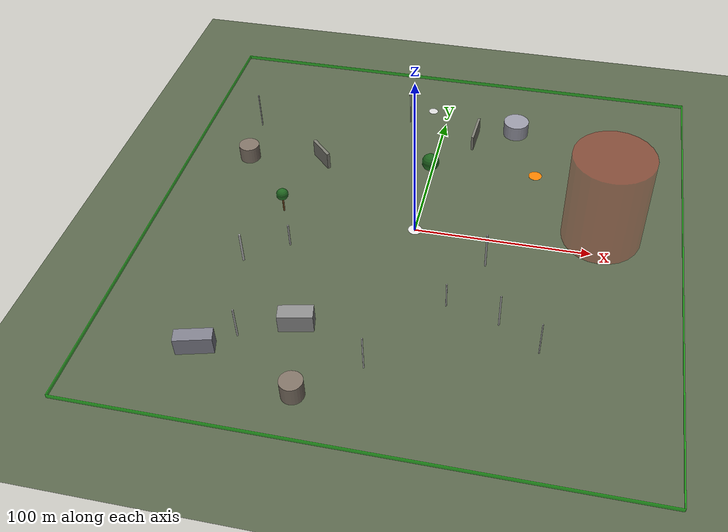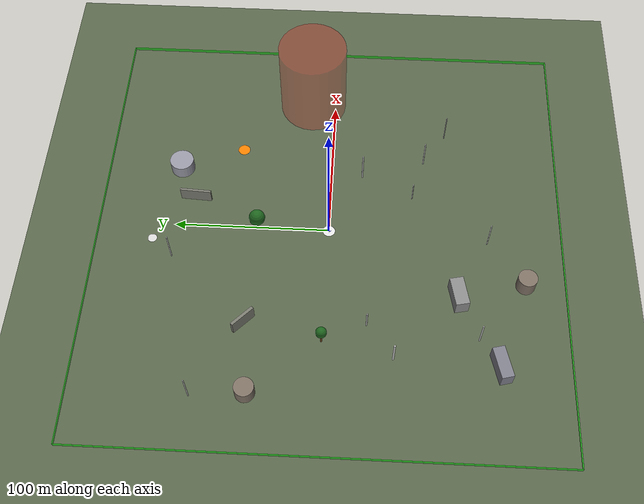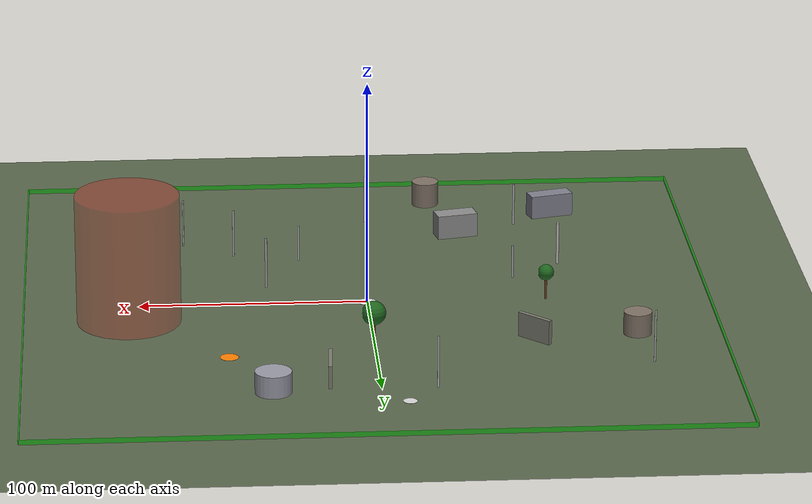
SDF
<?xml version="1.0" ?>
<sdf version="1.9">
  <!--
  Generated World: training_variant_010
  Seed: 52
  Difficulty: medium
  Obstacles: 19
  NFZs: 1
  Generated: 2025-12-27T10:39:35.578974
  Generator: Flyby F-11 World Generator v1.0.0
-->
  <world name="training_variant_010">
    <physics name="training_physics" type="ode">
      <max_step_size>0.001</max_step_size>
      <real_time_factor>1.0</real_time_factor>
      <real_time_update_rate>1000</real_time_update_rate>
      <ode>
        <solver>
          <type>quick</type>
          <iters>50</iters>
          <sor>1.3</sor>
        </solver>
        <constraints>
          <cfm>0.0</cfm>
          <erp>0.2</erp>
        </constraints>
      </ode>
    </physics>
    <plugin filename="gz-sim-physics-system" name="gz::sim::systems::Physics"/>
    <plugin filename="gz-sim-sensors-system" name="gz::sim::systems::Sensors">
      <render_engine>ogre2</render_engine>
    </plugin>
    <plugin filename="gz-sim-scene-broadcaster-system" name="gz::sim::systems::SceneBroadcaster"/>
    <plugin filename="gz-sim-user-commands-system" name="gz::sim::systems::UserCommands"/>
    <plugin filename="gz-sim-imu-system" name="gz::sim::systems::Imu"/>
    <plugin filename="gz-sim-air-pressure-system" name="gz::sim::systems::AirPressure"/>
    <plugin filename="gz-sim-magnetometer-system" name="gz::sim::systems::Magnetometer"/>
    <plugin filename="gz-sim-navsat-system" name="gz::sim::systems::NavSat"/>
    <plugin filename="gz-sim-contact-system" name="gz::sim::systems::Contact"/>
    <plugin filename="gz-sim-wind-effects-system" name="gz::sim::systems::WindEffects">
      <force_approximation_scaling_factor>1.0</force_approximation_scaling_factor>
    </plugin>
    <atmosphere type="adiabatic">
      <temperature>288.15</temperature>
      <pressure>101325</pressure>
      <mass_density>1.225</mass_density>
    </atmosphere>
    <wind>
      <linear_velocity>3.278023329994036 0.9520085953537332 0</linear_velocity>
    </wind>
    <spherical_coordinates>
      <surface_model>EARTH_WGS84</surface_model>
      <world_frame_orientation>ENU</world_frame_orientation>
      <latitude_deg>33.3853</latitude_deg>
      <longitude_deg>-117.5653</longitude_deg>
      <elevation>100</elevation>
      <heading_deg>0</heading_deg>
    </spherical_coordinates>
    <scene>
      <ambient>0.4 0.35 0.35 1</ambient>
      <background>0.8 0.5 0.4 1</background>
      <shadows>true</shadows>
      <grid>false</grid>
    </scene>
    <light type="directional" name="sun">
      <cast_shadows>true</cast_shadows>
      <pose>0 0 100 0 0 0</pose>
      <diffuse>0.9 0.6 0.4 1</diffuse>
      <specular>0.2 0.1 0.1 1</specular>
      <attenuation>
        <range>1000</range>
        <constant>0.9</constant>
        <linear>0.01</linear>
        <quadratic>0.001</quadratic>
      </attenuation>
      <direction>-0.1 0.3 -0.3</direction>
    </light>
    <model name="ground_plane">
      <static>true</static>
      <link name="link">
        <collision name="collision">
          <geometry>
            <plane>
              <normal>0 0 1</normal>
              <size>500 500</size>
            </plane>
          </geometry>
          <surface>
            <friction>
              <ode>
                <mu>100</mu>
                <mu2>50</mu2>
              </ode>
            </friction>
          </surface>
        </collision>
        <visual name="visual">
          <geometry>
            <plane>
              <normal>0 0 1</normal>
              <size>500 500</size>
            </plane>
          </geometry>
          <material>
            <ambient>0.35 0.4 0.3 1</ambient>
            <diffuse>0.35 0.4 0.3 1</diffuse>
          </material>
        </visual>
      </link>
    </model>
    <model name="geofence_north">
      <static>true</static>
      <pose>0 150.0 1 0 0 0</pose>
      <link name="link">
        <visual name="visual">
          <geometry>
            <box>
              <size>300.0 0.5 2</size>
            </box>
          </geometry>
          <material>
            <ambient>0 0.8 0 0.6</ambient>
            <diffuse>0 0.8 0 0.6</diffuse>
            <emissive>0 0.2 0 1</emissive>
          </material>
        </visual>
      </link>
    </model>
    <model name="geofence_south">
      <static>true</static>
      <pose>0 -150.0 1 0 0 0</pose>
      <link name="link">
        <visual name="visual">
          <geometry>
            <box>
              <size>300.0 0.5 2</size>
            </box>
          </geometry>
          <material>
            <ambient>0 0.8 0 0.6</ambient>
            <diffuse>0 0.8 0 0.6</diffuse>
            <emissive>0 0.2 0 1</emissive>
          </material>
        </visual>
      </link>
    </model>
    <model name="geofence_east">
      <static>true</static>
      <pose>150.0 0 1 0 0 0</pose>
      <link name="link">
        <visual name="visual">
          <geometry>
            <box>
              <size>0.5 300.0 2</size>
            </box>
          </geometry>
          <material>
            <ambient>0 0.8 0 0.6</ambient>
            <diffuse>0 0.8 0 0.6</diffuse>
            <emissive>0 0.2 0 1</emissive>
          </material>
        </visual>
      </link>
    </model>
    <model name="geofence_west">
      <static>true</static>
      <pose>-150.0 0 1 0 0 0</pose>
      <link name="link">
        <visual name="visual">
          <geometry>
            <box>
              <size>0.5 300.0 2</size>
            </box>
          </geometry>
          <material>
            <ambient>0 0.8 0 0.6</ambient>
            <diffuse>0 0.8 0 0.6</diffuse>
            <emissive>0 0.2 0 1</emissive>
          </material>
        </visual>
      </link>
    </model>
    <model name="nfz_0_volume">
      <static>true</static>
      <pose>104.2952814059283 15.939909806585177 28.83938890234564 0 0 0</pose>
      <link name="link">
        <visual name="visual">
          <geometry>
            <cylinder>
              <radius>22.609142891388935</radius>
              <length>57.67877780469128</length>
            </cylinder>
          </geometry>
          <material>
            <ambient>1 0 0 0.25</ambient>
            <diffuse>1 0 0 0.25</diffuse>
          </material>
        </visual>
      </link>
    </model>
    <model name="obstacle_tank_0">
      <static>true</static>
      <pose>-34.55307106432001 -124.82661881684314 5.565377532133235 0 0 0.0</pose>
      <link name="link">
        <visual name="visual">
          <geometry>
            <cylinder>
              <radius>6.0503495479780955</radius>
              <length>11.13075506426647</length>
            </cylinder>
          </geometry>
          <material>
            <ambient>0.5 0.45 0.4 1.0</ambient>
            <diffuse>0.5 0.45 0.4 1.0</diffuse>
          </material>
        </visual>
        <collision name="collision">
          <geometry>
            <cylinder>
              <radius>6.0503495479780955</radius>
              <length>11.13075506426647</length>
            </cylinder>
          </geometry>
        </collision>
      </link>
    </model>
    <model name="obstacle_pole_1">
      <static>true</static>
      <pose>-87.95996644861395 -42.72385265303218 9.564897709733245 0 0 0.0</pose>
      <link name="link">
        <visual name="visual">
          <geometry>
            <cylinder>
              <radius>0.5984340544016576</radius>
              <length>19.12979541946649</length>
            </cylinder>
          </geometry>
          <material>
            <ambient>0.75 0.75 0.75 1.0</ambient>
            <diffuse>0.75 0.75 0.75 1.0</diffuse>
          </material>
        </visual>
        <collision name="collision">
          <geometry>
            <cylinder>
              <radius>0.5984340544016576</radius>
              <length>19.12979541946649</length>
            </cylinder>
          </geometry>
        </collision>
      </link>
    </model>
    <model name="obstacle_pole_2">
      <static>true</static>
      <pose>-73.08447471493983 -94.84721673084674 9.689699225541322 0 0 0.0</pose>
      <link name="link">
        <visual name="visual">
          <geometry>
            <cylinder>
              <radius>0.46324061837908026</radius>
              <length>19.379398451082643</length>
            </cylinder>
          </geometry>
          <material>
            <ambient>0.7 0.7 0.7 1.0</ambient>
            <diffuse>0.7 0.7 0.7 1.0</diffuse>
          </material>
        </visual>
        <collision name="collision">
          <geometry>
            <cylinder>
              <radius>0.46324061837908026</radius>
              <length>19.379398451082643</length>
            </cylinder>
          </geometry>
        </collision>
      </link>
    </model>
    <model name="obstacle_pole_3">
      <static>true</static>
      <pose>-23.39132163464997 99.5360076978944 11.390701774474062 0 0 0.0</pose>
      <link name="link">
        <visual name="visual">
          <geometry>
            <cylinder>
              <radius>0.38230891336923895</radius>
              <length>22.781403548948123</length>
            </cylinder>
          </geometry>
          <material>
            <ambient>0.75 0.75 0.75 1.0</ambient>
            <diffuse>0.75 0.75 0.75 1.0</diffuse>
          </material>
        </visual>
        <collision name="collision">
          <geometry>
            <cylinder>
              <radius>0.38230891336923895</radius>
              <length>22.781403548948123</length>
            </cylinder>
          </geometry>
        </collision>
      </link>
    </model>
    <model name="obstacle_tank_4">
      <static>true</static>
      <pose>45.26223508596982 100.87687473470672 4.72759883243627 0 0 0.0</pose>
      <link name="link">
        <visual name="visual">
          <geometry>
            <cylinder>
              <radius>7.790704551072967</radius>
              <length>9.45519766487254</length>
            </cylinder>
          </geometry>
          <material>
            <ambient>0.6 0.6 0.65 1.0</ambient>
            <diffuse>0.6 0.6 0.65 1.0</diffuse>
          </material>
        </visual>
        <collision name="collision">
          <geometry>
            <cylinder>
              <radius>7.790704551072967</radius>
              <length>9.45519766487254</length>
            </cylinder>
          </geometry>
        </collision>
      </link>
    </model>
    <model name="obstacle_pole_5">
      <static>true</static>
      <pose>56.65523151059702 -61.227641120265204 10.8491561014244 0 0 0.0</pose>
      <link name="link">
        <visual name="visual">
          <geometry>
            <cylinder>
              <radius>0.41910261628130063</radius>
              <length>21.6983122028488</length>
            </cylinder>
          </geometry>
          <material>
            <ambient>0.7 0.7 0.7 1.0</ambient>
            <diffuse>0.7 0.7 0.7 1.0</diffuse>
          </material>
        </visual>
        <collision name="collision">
          <geometry>
            <cylinder>
              <radius>0.41910261628130063</radius>
              <length>21.6983122028488</length>
            </cylinder>
          </geometry>
        </collision>
      </link>
    </model>
    <model name="obstacle_pole_6">
      <static>true</static>
      <pose>43.51902461907227 -20.385214999492575 11.561905129349473 0 0 0.0</pose>
      <link name="link">
        <visual name="visual">
          <geometry>
            <cylinder>
              <radius>0.5092203775570157</radius>
              <length>23.123810258698946</length>
            </cylinder>
          </geometry>
          <material>
            <ambient>0.65 0.65 0.65 1.0</ambient>
            <diffuse>0.65 0.65 0.65 1.0</diffuse>
          </material>
        </visual>
        <collision name="collision">
          <geometry>
            <cylinder>
              <radius>0.5092203775570157</radius>
              <length>23.123810258698946</length>
            </cylinder>
          </geometry>
        </collision>
      </link>
    </model>
    <model name="obstacle_pole_7">
      <static>true</static>
      <pose>-5.046998246381406 -102.01847492187595 11.103669275701765 0 0 0.0</pose>
      <link name="link">
        <visual name="visual">
          <geometry>
            <cylinder>
              <radius>0.36130411249742833</radius>
              <length>22.20733855140353</length>
            </cylinder>
          </geometry>
          <material>
            <ambient>0.75 0.75 0.75 1.0</ambient>
            <diffuse>0.75 0.75 0.75 1.0</diffuse>
          </material>
        </visual>
        <collision name="collision">
          <geometry>
            <cylinder>
              <radius>0.36130411249742833</radius>
              <length>22.20733855140353</length>
            </cylinder>
          </geometry>
        </collision>
      </link>
    </model>
    <model name="obstacle_pole_8">
      <static>true</static>
      <pose>27.69293260671401 -53.74158661511825 8.142736354123608 0 0 0.0</pose>
      <link name="link">
        <visual name="visual">
          <geometry>
            <cylinder>
              <radius>0.35400629882628676</radius>
              <length>16.285472708247216</length>
            </cylinder>
          </geometry>
          <material>
            <ambient>0.75 0.75 0.75 1.0</ambient>
            <diffuse>0.75 0.75 0.75 1.0</diffuse>
          </material>
        </visual>
        <collision name="collision">
          <geometry>
            <cylinder>
              <radius>0.35400629882628676</radius>
              <length>16.285472708247216</length>
            </cylinder>
          </geometry>
        </collision>
      </link>
    </model>
    <model name="obstacle_tree_9">
      <static>true</static>
      <pose>-78.25011849395725 0.8916698604206488 0 0 0 0.0</pose>
      <link name="link">
        <visual name="trunk">
          <pose>0 0 5.136155399244297 0 0 0</pose>
          <geometry>
            <cylinder>
              <radius>0.5217611384717056</radius>
              <length>10.272310798488594</length>
            </cylinder>
          </geometry>
          <material>
            <ambient>0.4 0.25 0.1 1.0</ambient>
            <diffuse>0.4 0.25 0.1 1.0</diffuse>
          </material>
        </visual>
        <visual name="canopy">
          <pose>0 0 12.37667541520883 0 0 0</pose>
          <geometry>
            <sphere>
              <radius>3.5072743612003943</radius>
            </sphere>
          </geometry>
          <material>
            <ambient>0.12 0.4 0.12 1.0</ambient>
            <diffuse>0.12 0.4 0.12 1.0</diffuse>
          </material>
        </visual>
        <collision name="collision">
          <pose>0 0 8.643429760444691 0 0 0</pose>
          <geometry>
            <cylinder>
              <radius>3.5072743612003943</radius>
              <length>17.286859520889383</length>
            </cylinder>
          </geometry>
        </collision>
      </link>
    </model>
    <model name="obstacle_wall_10">
      <static>true</static>
      <pose>-68.69358749031903 49.19739001511181 5.437393849406399 0 0 2.3652891808942624</pose>
      <link name="link">
        <visual name="visual">
          <geometry>
            <box>
              <size>16.795317150363076 1.951950364958841 10.874787698812797</size>
            </box>
          </geometry>
          <material>
            <ambient>0.48 0.48 0.44 1.0</ambient>
            <diffuse>0.48 0.48 0.44 1.0</diffuse>
          </material>
        </visual>
        <collision name="collision">
          <geometry>
            <box>
              <size>16.795317150363076 1.951950364958841 10.874787698812797</size>
            </box>
          </geometry>
        </collision>
      </link>
    </model>
    <model name="obstacle_tank_11">
      <static>true</static>
      <pose>-113.51779258672066 43.91754361416659 5.013572511106705 0 0 0.0</pose>
      <link name="link">
        <visual name="visual">
          <geometry>
            <cylinder>
              <radius>6.1162684833535526</radius>
              <length>10.02714502221341</length>
            </cylinder>
          </geometry>
          <material>
            <ambient>0.5 0.45 0.4 1.0</ambient>
            <diffuse>0.5 0.45 0.4 1.0</diffuse>
          </material>
        </visual>
        <collision name="collision">
          <geometry>
            <cylinder>
              <radius>6.1162684833535526</radius>
              <length>10.02714502221341</length>
            </cylinder>
          </geometry>
        </collision>
      </link>
    </model>
    <model name="obstacle_pole_12">
      <static>true</static>
      <pose>-66.20840430964351 -26.18798896326298 7.5201772664328 0 0 0.0</pose>
      <link name="link">
        <visual name="visual">
          <geometry>
            <cylinder>
              <radius>0.4866245133482109</radius>
              <length>15.0403545328656</length>
            </cylinder>
          </geometry>
          <material>
            <ambient>0.65 0.65 0.65 1.0</ambient>
            <diffuse>0.65 0.65 0.65 1.0</diffuse>
          </material>
        </visual>
        <collision name="collision">
          <geometry>
            <cylinder>
              <radius>0.4866245133482109</radius>
              <length>15.0403545328656</length>
            </cylinder>
          </geometry>
        </collision>
      </link>
    </model>
    <model name="obstacle_tree_13">
      <static>true</static>
      <pose>0.05092920767850728 46.13360956890341 0 0 0 0.0</pose>
      <link name="link">
        <visual name="trunk">
          <pose>0 0 4.829051733962131 0 0 0</pose>
          <geometry>
            <cylinder>
              <radius>0.5467777053402527</radius>
              <length>9.658103467924262</length>
            </cylinder>
          </geometry>
          <material>
            <ambient>0.4 0.25 0.1 1.0</ambient>
            <diffuse>0.4 0.25 0.1 1.0</diffuse>
          </material>
        </visual>
        <visual name="canopy">
          <pose>0 0 12.788433900306632 0 0 0</pose>
          <geometry>
            <sphere>
              <radius>5.2172173873039505</radius>
            </sphere>
          </geometry>
          <material>
            <ambient>0.12 0.4 0.12 1.0</ambient>
            <diffuse>0.12 0.4 0.12 1.0</diffuse>
          </material>
        </visual>
        <collision name="collision">
          <pose>0 0 10.046269121266082 0 0 0</pose>
          <geometry>
            <cylinder>
              <radius>5.2172173873039505</radius>
              <length>20.092538242532164</length>
            </cylinder>
          </geometry>
        </collision>
      </link>
    </model>
    <model name="obstacle_building_14">
      <static>true</static>
      <pose>-90.9086205991648 -106.91556200826373 5.30020452845385 0 0 0.2541397417288168</pose>
      <link name="link">
        <visual name="visual">
          <geometry>
            <box>
              <size>19.831699882107408 7.674795418433893 10.6004090569077</size>
            </box>
          </geometry>
          <material>
            <ambient>0.5 0.5 0.55 1.0</ambient>
            <diffuse>0.5 0.5 0.55 1.0</diffuse>
          </material>
        </visual>
        <collision name="collision">
          <geometry>
            <box>
              <size>19.831699882107408 7.674795418433893 10.6004090569077</size>
            </box>
          </geometry>
        </collision>
      </link>
    </model>
    <model name="obstacle_pole_15">
      <static>true</static>
      <pose>-116.81024965410722 76.84884275563846 11.666632076253418 0 0 0.0</pose>
      <link name="link">
        <visual name="visual">
          <geometry>
            <cylinder>
              <radius>0.37572116597178906</radius>
              <length>23.333264152506835</length>
            </cylinder>
          </geometry>
          <material>
            <ambient>0.7 0.7 0.7 1.0</ambient>
            <diffuse>0.7 0.7 0.7 1.0</diffuse>
          </material>
        </visual>
        <collision name="collision">
          <geometry>
            <cylinder>
              <radius>0.37572116597178906</radius>
              <length>23.333264152506835</length>
            </cylinder>
          </geometry>
        </collision>
      </link>
    </model>
    <model name="obstacle_pole_16">
      <static>true</static>
      <pose>78.95613066407842 -75.58834644961917 10.919212581496737 0 0 0.0</pose>
      <link name="link">
        <visual name="visual">
          <geometry>
            <cylinder>
              <radius>0.327256084726154</radius>
              <length>21.838425162993474</length>
            </cylinder>
          </geometry>
          <material>
            <ambient>0.7 0.7 0.7 1.0</ambient>
            <diffuse>0.7 0.7 0.7 1.0</diffuse>
          </material>
        </visual>
        <collision name="collision">
          <geometry>
            <cylinder>
              <radius>0.327256084726154</radius>
              <length>21.838425162993474</length>
            </cylinder>
          </geometry>
        </collision>
      </link>
    </model>
    <model name="obstacle_building_17">
      <static>true</static>
      <pose>-45.29096673344111 -82.45630648710771 5.434988102190614 0 0 0.2049785828300307</pose>
      <link name="link">
        <visual name="visual">
          <geometry>
            <box>
              <size>18.502603563694308 8.655067273107097 10.869976204381228</size>
            </box>
          </geometry>
          <material>
            <ambient>0.55 0.55 0.55 1.0</ambient>
            <diffuse>0.55 0.55 0.55 1.0</diffuse>
          </material>
        </visual>
        <collision name="collision">
          <geometry>
            <box>
              <size>18.502603563694308 8.655067273107097 10.869976204381228</size>
            </box>
          </geometry>
        </collision>
      </link>
    </model>
    <model name="obstacle_wall_18">
      <static>true</static>
      <pose>21.0099585411663 88.65493556142886 4.945772230745611 0 0 1.5115999030488099</pose>
      <link name="link">
        <visual name="visual">
          <geometry>
            <box>
              <size>20.261623152852245 1.5562359800635055 9.891544461491222</size>
            </box>
          </geometry>
          <material>
            <ambient>0.48 0.48 0.44 1.0</ambient>
            <diffuse>0.48 0.48 0.44 1.0</diffuse>
          </material>
        </visual>
        <collision name="collision">
          <geometry>
            <box>
              <size>20.261623152852245 1.5562359800635055 9.891544461491222</size>
            </box>
          </geometry>
        </collision>
      </link>
    </model>
    <model name="lz_primary">
      <static>true</static>
      <pose>0 0 0.02 0 0 0</pose>
      <link name="link">
        <visual name="pad">
          <geometry>
            <cylinder>
              <radius>4.0</radius>
              <length>0.04</length>
            </cylinder>
          </geometry>
          <material>
            <ambient>0.9 0.9 0.9 1</ambient>
            <diffuse>0.9 0.9 0.9 1</diffuse>
          </material>
        </visual>
        <visual name="H_v">
          <pose>0 0 0.02 0 0 0</pose>
          <geometry>
            <box>
              <size>0.6 2.5 0.01</size>
            </box>
          </geometry>
          <material>
            <ambient>0 0 0.8 1</ambient>
            <diffuse>0 0 0.8 1</diffuse>
          </material>
        </visual>
        <visual name="H_h">
          <pose>0 0 0.02 0 0 0</pose>
          <geometry>
            <box>
              <size>2.5 0.6 0.01</size>
            </box>
          </geometry>
          <material>
            <ambient>0 0 0.8 1</ambient>
            <diffuse>0 0 0.8 1</diffuse>
          </material>
        </visual>
      </link>
    </model>
    <model name="lz_secondary">
      <static>true</static>
      <pose>-10.781268445803889 113.79222893722516 0.02 0 0 0</pose>
      <link name="link">
        <visual name="pad">
          <geometry>
            <cylinder>
              <radius>3.0</radius>
              <length>0.04</length>
            </cylinder>
          </geometry>
          <material>
            <ambient>0.85 0.85 0.85 1</ambient>
            <diffuse>0.85 0.85 0.85 1</diffuse>
          </material>
        </visual>
      </link>
    </model>
    <model name="lz_emergency">
      <static>true</static>
      <pose>62.3064734338721 61.122911902379315 0.02 0 0 0</pose>
      <link name="link">
        <visual name="pad">
          <geometry>
            <cylinder>
              <radius>4.0</radius>
              <length>0.04</length>
            </cylinder>
          </geometry>
          <material>
            <ambient>1 0.5 0 1</ambient>
            <diffuse>1 0.5 0 1</diffuse>
          </material>
        </visual>
      </link>
    </model>
    <include>
      <uri>model://iris_with_ardupilot</uri>
      <name>iris</name>
      <pose>0 0 0.5 0 0 0</pose>
    </include>
  </world>
</sdf>

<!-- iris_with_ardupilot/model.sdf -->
<sdf version="1.9">
  <model name="iris_with_ardupilot">
    <pose>0 0 0.2 0 0 0</pose>

    <link name="base_link">
      <inertial>
        <mass>1.5</mass>
        <inertia>
          <ixx>0.029125</ixx>
          <ixy>0</ixy>
          <ixz>0</ixz>
          <iyy>0.029125</iyy>
          <iyz>0</iyz>
          <izz>0.055225</izz>
        </inertia>
      </inertial>

      <visual name="body_visual">
        <geometry>
          <box>
            <size>0.47 0.47 0.11</size>
          </box>
        </geometry>
        <material>
          <ambient>0.2 0.2 0.2 1</ambient>
          <diffuse>0.2 0.2 0.2 1</diffuse>
        </material>
      </visual>

      <!-- Center marker for orientation (green = forward) -->
      <visual name="center_marker">
        <pose>0.15 0 0 0 0 0</pose>
        <geometry>
          <sphere>
            <radius>0.05</radius>
          </sphere>
        </geometry>
        <material>
          <ambient>0 1 0 1</ambient>
          <diffuse>0 1 0 1</diffuse>
        </material>
      </visual>

      <collision name="collision">
        <geometry>
          <box>
            <size>0.47 0.47 0.11</size>
          </box>
        </geometry>
      </collision>

      <!-- GPS/NavSat Sensor                -->
      <!-- Consumer-grade GPS accuracy      -->
      <sensor name="navsat_sensor" type="navsat">
        <always_on>1</always_on>
        <update_rate>10</update_rate>
        <topic>gps</topic>
        <navsat>
          <position_sensing>
            <horizontal>
              <noise type="gaussian">
                <mean>0.0</mean>
                <stddev>0.5</stddev>
              </noise>
            </horizontal>
            <vertical>
              <noise type="gaussian">
                <mean>0.0</mean>
                <stddev>1.0</stddev>
              </noise>
            </vertical>
          </position_sensing>
          <velocity_sensing>
            <horizontal>
              <noise type="gaussian">
                <mean>0.0</mean>
                <stddev>0.05</stddev>
              </noise>
            </horizontal>
            <vertical>
              <noise type="gaussian">
                <mean>0.0</mean>
                <stddev>0.1</stddev>
              </noise>
            </vertical>
          </velocity_sensing>
        </navsat>
      </sensor>

      <!-- Magnetometer Sensor              -->
      <!-- Earth magnetic field sensing     -->
      <!-- Declination: ~11.5 deg E (San Diego) -->
      <sensor name="magnetometer_sensor" type="magnetometer">
        <always_on>1</always_on>
        <update_rate>50</update_rate>
        <topic>magnetometer</topic>
        <magnetometer>
          <x>
            <noise type="gaussian">
              <mean>0</mean>
              <stddev>0.001</stddev>
              <bias_mean>0.00001</bias_mean>
              <bias_stddev>0.000002</bias_stddev>
            </noise>
          </x>
          <y>
            <noise type="gaussian">
              <mean>0</mean>
              <stddev>0.001</stddev>
              <bias_mean>0.00001</bias_mean>
              <bias_stddev>0.000002</bias_stddev>
            </noise>
          </y>
          <z>
            <noise type="gaussian">
              <mean>0</mean>
              <stddev>0.001</stddev>
              <bias_mean>0.00001</bias_mean>
              <bias_stddev>0.000002</bias_stddev>
            </noise>
          </z>
        </magnetometer>
      </sensor>

      <!-- Barometer Sensor                 -->
      <!-- Atmospheric pressure sensing     -->
      <!-- ~8.3 Pa per meter at sea level   -->
      <sensor name="air_pressure_sensor" type="air_pressure">
        <always_on>1</always_on>
        <update_rate>20</update_rate>
        <topic>air_pressure</topic>
        <air_pressure>
          <reference_altitude>0</reference_altitude>
          <pressure>
            <noise type="gaussian">
              <mean>0</mean>
              <stddev>10</stddev>
            </noise>
          </pressure>
        </air_pressure>
      </sensor>

    </link>

    <!-- Rotor 0 (Front Right, CW)        -->
    <link name="rotor_0">
      <pose>0.13 -0.22 0.023 0 0 0</pose>
      <inertial>
        <mass>0.005</mass>
        <inertia>
          <ixx>9.75e-07</ixx>
          <ixy>0</ixy>
          <ixz>0</ixz>
          <iyy>0.000166704</iyy>
          <iyz>0</iyz>
          <izz>0.000167604</izz>
        </inertia>
      </inertial>
      <visual name="visual">
        <geometry>
          <cylinder>
            <radius>0.128</radius>
            <length>0.005</length>
          </cylinder>
        </geometry>
        <material>
          <ambient>1 0 0 1</ambient>
          <diffuse>1 0 0 1</diffuse>
        </material>
      </visual>
    </link>

    <!-- Rotor 1 (Back Left, CW)          -->
    <link name="rotor_1">
      <pose>-0.13 0.2 0.023 0 0 0</pose>
      <inertial>
        <mass>0.005</mass>
        <inertia>
          <ixx>9.75e-07</ixx>
          <ixy>0</ixy>
          <ixz>0</ixz>
          <iyy>0.000166704</iyy>
          <iyz>0</iyz>
          <izz>0.000167604</izz>
        </inertia>
      </inertial>
      <visual name="visual">
        <geometry>
          <cylinder>
            <radius>0.128</radius>
            <length>0.005</length>
          </cylinder>
        </geometry>
        <material>
          <ambient>1 0 0 1</ambient>
          <diffuse>1 0 0 1</diffuse>
        </material>
      </visual>
    </link>

    <!-- Rotor 2 (Front Left, CCW)        -->
    <link name="rotor_2">
      <pose>0.13 0.22 0.023 0 0 0</pose>
      <inertial>
        <mass>0.005</mass>
        <inertia>
          <ixx>9.75e-07</ixx>
          <ixy>0</ixy>
          <ixz>0</ixz>
          <iyy>0.000166704</iyy>
          <iyz>0</iyz>
          <izz>0.000167604</izz>
        </inertia>
      </inertial>
      <visual name="visual">
        <geometry>
          <cylinder>
            <radius>0.128</radius>
            <length>0.005</length>
          </cylinder>
        </geometry>
        <material>
          <ambient>0 0 1 1</ambient>
          <diffuse>0 0 1 1</diffuse>
        </material>
      </visual>
    </link>

    <!-- Rotor 3 (Back Right, CCW)        -->
    <link name="rotor_3">
      <pose>-0.13 -0.2 0.023 0 0 0</pose>
      <inertial>
        <mass>0.005</mass>
        <inertia>
          <ixx>9.75e-07</ixx>
          <ixy>0</ixy>
          <ixz>0</ixz>
          <iyy>0.000166704</iyy>
          <iyz>0</iyz>
          <izz>0.000167604</izz>
        </inertia>
      </inertial>
      <visual name="visual">
        <geometry>
          <cylinder>
            <radius>0.128</radius>
            <length>0.005</length>
          </cylinder>
        </geometry>
        <material>
          <ambient>0 0 1 1</ambient>
          <diffuse>0 0 1 1</diffuse>
        </material>
      </visual>
    </link>

    <!-- Rotor joints -->
    <joint name="rotor_0_joint" type="revolute">
      <parent>base_link</parent>
      <child>rotor_0</child>
      <axis>
        <xyz>0 0 1</xyz>
        <limit>
          <lower>-1e16</lower>
          <upper>1e16</upper>
        </limit>
      </axis>
    </joint>

    <joint name="rotor_1_joint" type="revolute">
      <parent>base_link</parent>
      <child>rotor_1</child>
      <axis>
        <xyz>0 0 1</xyz>
        <limit>
          <lower>-1e16</lower>
          <upper>1e16</upper>
        </limit>
      </axis>
    </joint>

    <joint name="rotor_2_joint" type="revolute">
      <parent>base_link</parent>
      <child>rotor_2</child>
      <axis>
        <xyz>0 0 1</xyz>
        <limit>
          <lower>-1e16</lower>
          <upper>1e16</upper>
        </limit>
      </axis>
    </joint>

    <joint name="rotor_3_joint" type="revolute">
      <parent>base_link</parent>
      <child>rotor_3</child>
      <axis>
        <xyz>0 0 1</xyz>
        <limit>
          <lower>-1e16</lower>
          <upper>1e16</upper>
        </limit>
      </axis>
    </joint>

    <!-- IMU Sensor Link                  -->
    <!-- 250Hz MEMS IMU with noise        -->
    <link name="imu_link">
      <pose>0 0 0 0 0 0</pose>
      <inertial>
        <mass>0.001</mass>
        <inertia>
          <ixx>1e-05</ixx>
          <ixy>0</ixy>
          <ixz>0</ixz>
          <iyy>1e-05</iyy>
          <iyz>0</iyz>
          <izz>1e-05</izz>
        </inertia>
      </inertial>
      <sensor name="imu_sensor" type="imu">
        <always_on>1</always_on>
        <update_rate>250</update_rate>
        <topic>imu</topic>
        <imu>
          <angular_velocity>
            <x>
              <noise type="gaussian">
                <mean>0</mean>
                <stddev>0.009</stddev>
                <bias_mean>0.0001</bias_mean>
                <bias_stddev>0.00002</bias_stddev>
              </noise>
            </x>
            <y>
              <noise type="gaussian">
                <mean>0</mean>
                <stddev>0.009</stddev>
                <bias_mean>0.0001</bias_mean>
                <bias_stddev>0.00002</bias_stddev>
              </noise>
            </y>
            <z>
              <noise type="gaussian">
                <mean>0</mean>
                <stddev>0.009</stddev>
                <bias_mean>0.0001</bias_mean>
                <bias_stddev>0.00002</bias_stddev>
              </noise>
            </z>
          </angular_velocity>
          <linear_acceleration>
            <x>
              <noise type="gaussian">
                <mean>0</mean>
                <stddev>0.017</stddev>
                <bias_mean>0.001</bias_mean>
                <bias_stddev>0.0002</bias_stddev>
              </noise>
            </x>
            <y>
              <noise type="gaussian">
                <mean>0</mean>
                <stddev>0.017</stddev>
                <bias_mean>0.001</bias_mean>
                <bias_stddev>0.0002</bias_stddev>
              </noise>
            </y>
            <z>
              <noise type="gaussian">
                <mean>0</mean>
                <stddev>0.017</stddev>
                <bias_mean>0.001</bias_mean>
                <bias_stddev>0.0002</bias_stddev>
              </noise>
            </z>
          </linear_acceleration>
        </imu>
      </sensor>
    </link>

    <joint name="imu_joint" type="fixed">
      <parent>base_link</parent>
      <child>imu_link</child>
    </joint>

    <!-- Rangefinder Link                 -->
    <!-- Downward-facing lidar for AGL    -->
    <link name="rangefinder_link">
      <pose>0 0 -0.05 0 0 0</pose>
      <inertial>
        <mass>0.01</mass>
        <inertia>
          <ixx>1e-05</ixx>
          <ixy>0</ixy>
          <ixz>0</ixz>
          <iyy>1e-05</iyy>
          <iyz>0</iyz>
          <izz>1e-05</izz>
        </inertia>
      </inertial>
      <visual name="visual">
        <geometry>
          <cylinder>
            <radius>0.01</radius>
            <length>0.02</length>
          </cylinder>
        </geometry>
        <material>
          <ambient>0.5 0.5 0.5 1</ambient>
          <diffuse>0.5 0.5 0.5 1</diffuse>
        </material>
      </visual>
      <sensor name="rangefinder" type="gpu_lidar">
        <!-- Pointing straight down (pitch = -90 deg = -1.5708 rad) -->
        <pose>0 0 0 0 1.5708 0</pose>
        <always_on>1</always_on>
        <update_rate>20</update_rate>
        <topic>rangefinder</topic>
        <ray>
          <scan>
            <horizontal>
              <samples>1</samples>
              <resolution>1</resolution>
              <min_angle>0</min_angle>
              <max_angle>0</max_angle>
            </horizontal>
            <vertical>
              <samples>1</samples>
              <resolution>1</resolution>
              <min_angle>0</min_angle>
              <max_angle>0</max_angle>
            </vertical>
          </scan>
          <range>
            <min>0.1</min>
            <max>40.0</max>
            <resolution>0.01</resolution>
          </range>
          <noise>
            <type>gaussian</type>
            <mean>0</mean>
            <stddev>0.02</stddev>
          </noise>
        </ray>
        <visualize>false</visualize>
      </sensor>
    </link>

    <joint name="rangefinder_joint" type="fixed">
      <parent>base_link</parent>
      <child>rangefinder_link</child>
    </joint>

    <!-- ArduPilot Plugin                 -->
    <plugin filename="ArduPilotPlugin" name="ArduPilotPlugin">
      <!-- Network Configuration -->
      <fdm_addr>127.0.0.1</fdm_addr>
      <fdm_port_in>9002</fdm_port_in>
      <fdm_port_out>9003</fdm_port_out>
      <connectionTimeoutMaxCount>5</connectionTimeoutMaxCount>

      <!-- Simulation Settings -->
      <lock_step>1</lock_step>
      <have_32_channels>0</have_32_channels>

      <!-- Coordinate Transforms -->
      <modelXYZToAirplaneXForwardZDown>0 0 0 3.141593 0 0</modelXYZToAirplaneXForwardZDown>
      <gazeboXYZToNED>0 0 0 3.141593 0 0</gazeboXYZToNED>

      <!-- Sensor Reference -->
      <imuName>imu_link::imu_sensor</imuName>

      <!-- Control Channel 0: Front Right (CW) -->
      <control channel="0">
        <jointName>rotor_0_joint</jointName>
        <useForce>1</useForce>
        <multiplier>838</multiplier>
        <offset>-0.5</offset>
        <servo_min>1000</servo_min>
        <servo_max>2000</servo_max>
        <type>VELOCITY</type>
        <p_gain>0.20</p_gain>
        <i_gain>0</i_gain>
        <d_gain>0</d_gain>
        <i_max>0</i_max>
        <i_min>0</i_min>
        <cmd_max>2.5</cmd_max>
        <cmd_min>-2.5</cmd_min>
      </control>

      <!-- Control Channel 1: Back Left (CW) -->
      <control channel="1">
        <jointName>rotor_1_joint</jointName>
        <useForce>1</useForce>
        <multiplier>838</multiplier>
        <offset>-0.5</offset>
        <servo_min>1000</servo_min>
        <servo_max>2000</servo_max>
        <type>VELOCITY</type>
        <p_gain>0.20</p_gain>
        <i_gain>0</i_gain>
        <d_gain>0</d_gain>
        <i_max>0</i_max>
        <i_min>0</i_min>
        <cmd_max>2.5</cmd_max>
        <cmd_min>-2.5</cmd_min>
      </control>

      <!-- Control Channel 2: Front Left (CCW) -->
      <control channel="2">
        <jointName>rotor_2_joint</jointName>
        <useForce>1</useForce>
        <multiplier>838</multiplier>
        <offset>-0.5</offset>
        <servo_min>1000</servo_min>
        <servo_max>2000</servo_max>
        <type>VELOCITY</type>
        <p_gain>0.20</p_gain>
        <i_gain>0</i_gain>
        <d_gain>0</d_gain>
        <i_max>0</i_max>
        <i_min>0</i_min>
        <cmd_max>2.5</cmd_max>
        <cmd_min>-2.5</cmd_min>
      </control>

      <!-- Control Channel 3: Back Right (CCW) -->
      <control channel="3">
        <jointName>rotor_3_joint</jointName>
        <useForce>1</useForce>
        <multiplier>838</multiplier>
        <offset>-0.5</offset>
        <servo_min>1000</servo_min>
        <servo_max>2000</servo_max>
        <type>VELOCITY</type>
        <p_gain>0.20</p_gain>
        <i_gain>0</i_gain>
        <d_gain>0</d_gain>
        <i_max>0</i_max>
        <i_min>0</i_min>
        <cmd_max>2.5</cmd_max>
        <cmd_min>-2.5</cmd_min>
      </control>
    </plugin>

  </model>
</sdf>
